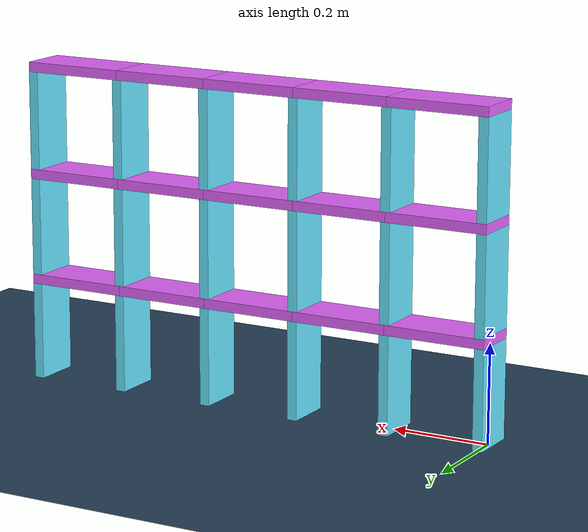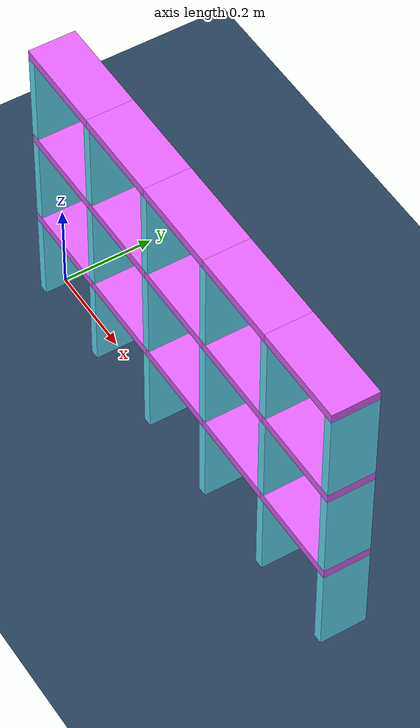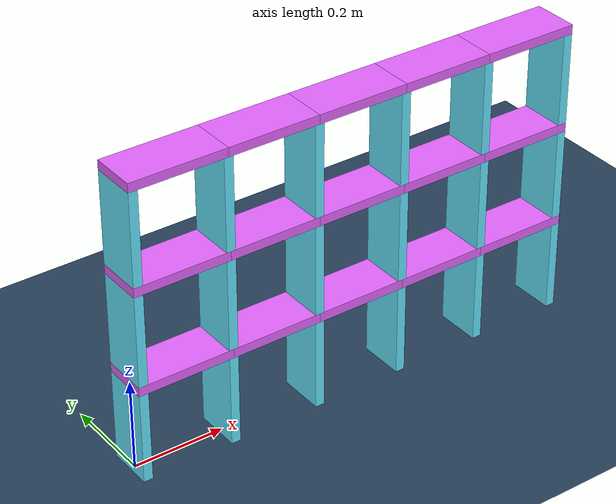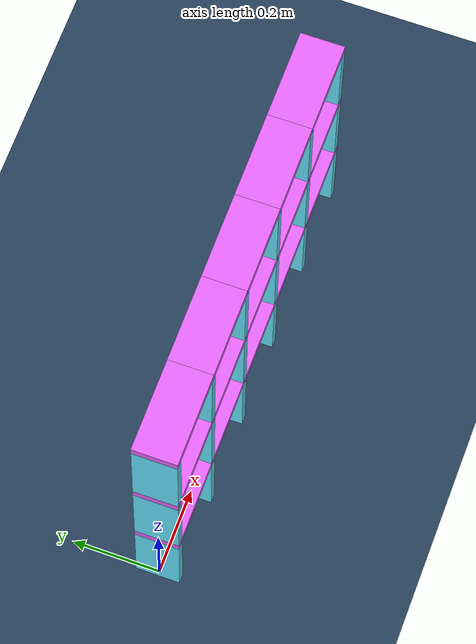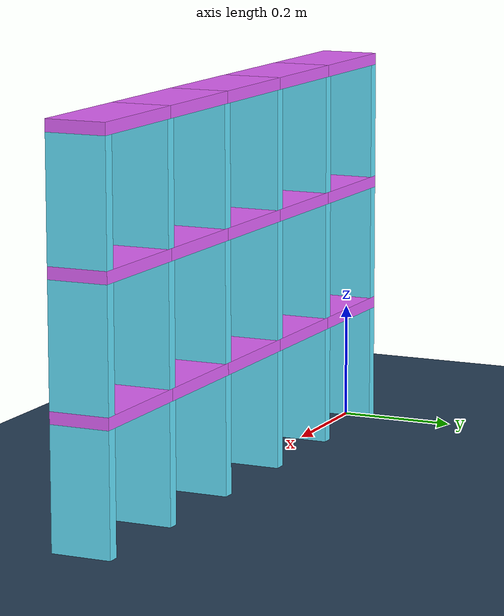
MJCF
<mujoco>
  <visual>
    <headlight diffuse="0.6 0.6 0.6" ambient="0.1 0.1 0.1" specular="0 0 0"/>
    <rgba haze="0.15 0.25 0.35 1"/>
    <global azimuth="120" elevation="-20"/>
  </visual>
  <asset>
    <texture type="skybox" builtin="gradient" rgb1="0.3 0.5 0.7" rgb2="0 0 0" width="512" height="3072"/>
    <texture type="2d" name="groundplane" builtin="checker" mark="edge" rgb1="0.2 0.3 0.4" rgb2="0.1 0.2 0.3" markrgb="0.8 0.8 0.8" width="300" height="300"/>
    <material name="groundplane" texture="groundplane" texuniform="true" texrepeat="5 5" reflectance="0.2"/>
  </asset>
  <worldbody>
    <light pos="0 0 1.5" dir="0 0 -1" directional="true"/>
    <geom name="floor" size="0 0 0.05" type="plane" material="groundplane"/>
    <body pos="0 0 0.1">
      <freejoint/>
      <geom type="box" size=".01 0.05 0.1" rgba="0.4 .9 09 1"/>
    </body>
    <body pos="0.2 0 0.1">
      <freejoint/>
      <geom type="box" size=".01 0.05 .1" rgba="0.4 .9 09 1"/>
    </body>
    <body pos="0.4 0 0.1">
      <freejoint/>
      <geom type="box" size=".01 0.05 .1" rgba="0.4 .9 09 1"/>
    </body>
    <body pos="0.6 0 0.1">
      <freejoint/>
      <geom type="box" size=".01 0.05 .1" rgba="0.4 .9 09 1"/>
    </body>
    <body pos="0.8 0 0.1">
      <freejoint/>
      <geom type="box" size=".01 0.05 .1" rgba="0.4 .9 09 1"/>
    </body>
    <body pos="1.0 0 0.1">
      <freejoint/>
      <geom type="box" size=".01 0.05 .1" rgba="0.4 .9 09 1"/>
    </body>
    <body pos=".095 0 0.21">
      <freejoint/>
      <geom type="box" size=".105 0.05 .01" rgba="0.9 .4 09 1"/>
    </body>
    <body pos=".30 0 0.21">
      <freejoint/>
      <geom type="box" size=".10 0.05 .01" rgba="0.9 .4 09 1"/>
    </body>
    <body pos=".50 0 0.21">
      <freejoint/>
      <geom type="box" size=".10 0.05 .01" rgba="0.9 .4 09 1"/>
    </body>
    <body pos=".70 0 0.21">
      <freejoint/>
      <geom type="box" size=".10 0.05 .01" rgba="0.9 .4 09 1"/>
    </body>
    <body pos=".905 0 0.21">
      <freejoint/>
      <geom type="box" size=".105 0.05 .01" rgba="0.9 .4 09 1"/>
    </body>
    <body pos="0 0 0.32">
      <freejoint/>
      <geom type="box" size=".01 0.05 0.1" rgba="0.4 .9 09 1"/>
    </body>
    <body pos="0.2 0 0.32">
      <freejoint/>
      <geom type="box" size=".01 0.05 .1" rgba="0.4 .9 09 1"/>
    </body>
    <body pos="0.4 0 0.32">
      <freejoint/>
      <geom type="box" size=".01 0.05 .1" rgba="0.4 .9 09 1"/>
    </body>
    <body pos="0.6 0 0.32">
      <freejoint/>
      <geom type="box" size=".01 0.05 .1" rgba="0.4 .9 09 1"/>
    </body>
    <body pos="0.8 0 0.32">
      <freejoint/>
      <geom type="box" size=".01 0.05 .1" rgba="0.4 .9 09 1"/>
    </body>
    <body pos="1.0 0 0.32">
      <freejoint/>
      <geom type="box" size=".01 0.05 .1" rgba="0.4 .9 09 1"/>
    </body>
    <body pos=".095 0 0.43">
      <freejoint/>
      <geom type="box" size=".105 0.05 .01" rgba="0.9 .4 09 1"/>
    </body>
    <body pos=".30 0 0.43">
      <freejoint/>
      <geom type="box" size=".10 0.05 .01" rgba="0.9 .4 09 1"/>
    </body>
    <body pos=".50 0 0.43">
      <freejoint/>
      <geom type="box" size=".10 0.05 .01" rgba="0.9 .4 09 1"/>
    </body>
    <body pos=".70 0 0.43">
      <freejoint/>
      <geom type="box" size=".10 0.05 .01" rgba="0.9 .4 09 1"/>
    </body>
    <body pos=".905 0 0.43">
      <freejoint/>
      <geom type="box" size=".105 0.05 .01" rgba="0.9 .4 09 1"/>
    </body>
    <body pos="0 0 0.54">
      <freejoint/>
      <geom type="box" size=".01 0.05 0.1" rgba="0.4 .9 09 1"/>
    </body>
    <body pos="0.2 0 0.54">
      <freejoint/>
      <geom type="box" size=".01 0.05 .1" rgba="0.4 .9 09 1"/>
    </body>
    <body pos="0.4 0 0.54">
      <freejoint/>
      <geom type="box" size=".01 0.05 .1" rgba="0.4 .9 09 1"/>
    </body>
    <body pos="0.6 0 0.54">
      <freejoint/>
      <geom type="box" size=".01 0.05 .1" rgba="0.4 .9 09 1"/>
    </body>
    <body pos="0.8 0 0.54">
      <freejoint/>
      <geom type="box" size=".01 0.05 .1" rgba="0.4 .9 09 1"/>
    </body>
    <body pos="1.0 0 0.54">
      <freejoint/>
      <geom type="box" size=".01 0.05 .1" rgba="0.4 .9 09 1"/>
    </body>
    <body pos=".095 0 0.65">
      <freejoint/>
      <geom type="box" size=".105 0.05 .01" rgba="0.9 .4 09 1"/>
    </body>
    <body pos=".30 0 0.65">
      <freejoint/>
      <geom type="box" size=".10 0.05 .01" rgba="0.9 .4 09 1"/>
    </body>
    <body pos=".50 0 0.65">
      <freejoint/>
      <geom type="box" size=".10 0.05 .01" rgba="0.9 .4 09 1"/>
    </body>
    <body pos=".70 0 0.65">
      <freejoint/>
      <geom type="box" size=".10 0.05 .01" rgba="0.9 .4 09 1"/>
    </body>
    <body pos=".905 0 0.65">
      <freejoint/>
      <geom type="box" size=".105 0.05 .01" rgba="0.9 .4 09 1"/>
    </body>
  </worldbody>
</mujoco>
